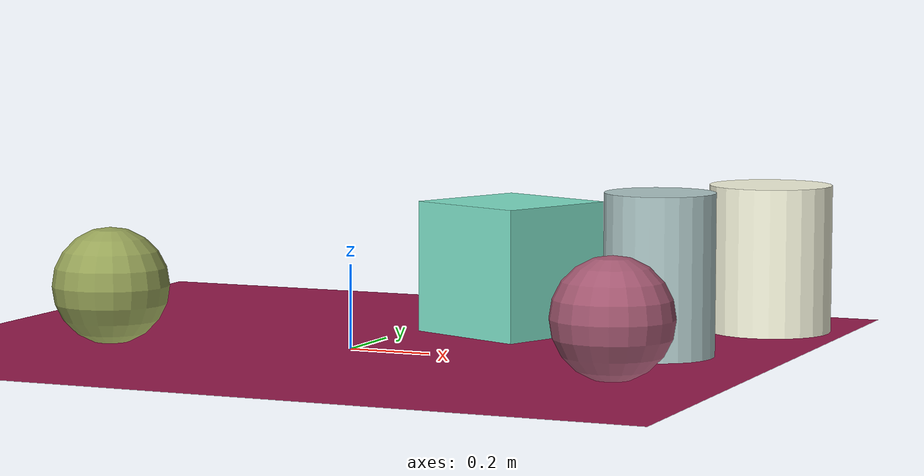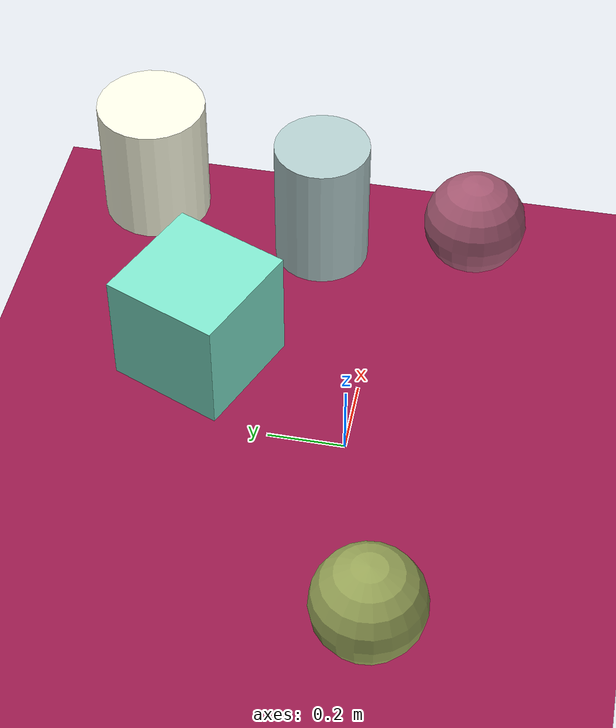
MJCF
<mujoco>
   <asset>
<texture type="skybox" builtin="gradient" rgb1="0.3 0.5 0.5" rgb2="0.4 0.4 0.2" width="256" height="256"/>
<texture name="checker_0" builtin="checker" rgb1="0.9 1.0 0.4" rgb2="0.3 0.3 0.3" width="200" height="200"/>
<texture name="checker_1" builtin="checker" rgb1="0.8 1.0 1.0" rgb2="0.6 0.6 0.6" width="200" height="200"/>
<texture name="gradient_2" builtin="gradient" rgb1="0.4 0.3 0.3" rgb2="0.9 0.4 0.6" width="200" height="200"/>
<texture name="flat_3" builtin="flat" rgb1="0.5 0.9 0.8" rgb2="0.5 0.9 0.8"  width="200" height="200"/>
<texture name="flat_4" builtin="flat" rgb1="1.0 1.0 0.9" rgb2="1.0 1.0 0.9"  width="200" height="200"/><material name="checker_0_mat" reflectance="0" texrepeat="8 8" texture="checker_0" texuniform="false" />
<material name="checker_1_mat" reflectance="0" texrepeat="5 5" texture="checker_1" texuniform="false" />
<material name="gradient_2_mat" reflectance="0" texture="gradient_2" texuniform="true"/>
<material name="flat_3_mat" reflectance="0" texture="flat_3" texuniform="true"/>
<material name="flat_4_mat" reflectance="0" texture="flat_4" texuniform="true"/>
   </asset>

   <worldbody>
      <light diffuse=".9 .9 .9" pos="0 0 3" dir="0 0 -1"/>
     <geom type="plane" size="1 1 0.1" rgba="0.6 0.1 0.3 1"/>
<geom type="sphere" pos="-0.56 -0.15 0.14" size="0.14 0.14 0.14" material="checker_0_mat" euler="0 0 14" />
<geom type="cylinder" pos="0.7 0.19 0.19" size="0.13 0.19 0.19" material="checker_1_mat" euler="0 0 39" />
<geom type="sphere" pos="0.74 -0.23 0.14" size="0.14 0.14 0.14" material="gradient_2_mat" euler="0 0 89" />
<geom type="box" pos="0.23 0.43 0.16" size="0.16 0.16 0.16" material="flat_3_mat" euler="0 0 67" />
<geom type="cylinder" pos="0.81 0.69 0.18" size="0.15 0.18 0.18" material="flat_4_mat" euler="0 0 2" /><camera euler="60 0 180" fovy="60" name="camera1" pos="-0.2 -1.5 1"></camera>   </worldbody>
</mujoco>
